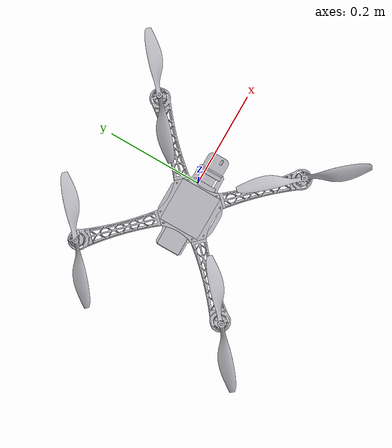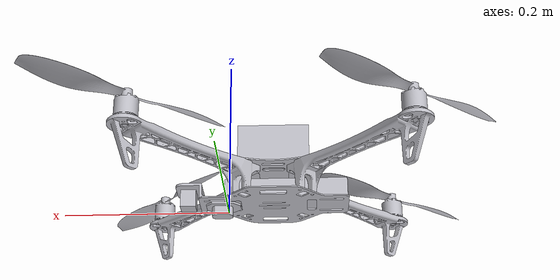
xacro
<?xml version="1.0" ?>
<robot name="F450" xmlns:xacro="http://www.ros.org/wiki/xacro">
  <xacro:arg name="is_ignition" default="false"/>

<!--xacro:include filename="$(find F450_description)/urdf/materials.xacro" -->
<xacro:include filename="$(find skyrn_description)/urdf/skyrn_ros2_control.xacro" />
<xacro:include filename="$(find skyrn_description)/urdf/skyrn_gazebo.xacro" />
<link name="base_link">
  <inertial>
    <origin xyz="-0.0543337048447064 -0.013298355942825918 0.05378858506314188" rpy="0 0 0"/>
    <mass value="0.013756910927204945"/>
    <inertia ixx="1.2e-05" iyy="1.2e-05" izz="2.5e-05" ixy="0.0" iyz="0.0" ixz="0.0"/>
  </inertial>
  <visual>
    <origin xyz="0 0 0" rpy="0 0 0"/>
    <geometry>
      <mesh filename="file://$(find skyrn_description)/meshes/base_link.stl" scale="0.001 0.001 0.001"/>
    </geometry>
    <material name="silver"/>
  </visual>
  <collision>
    <origin xyz="0 0 0" rpy="0 0 0"/>
    <geometry>
      <mesh filename="file://$(find skyrn_description)/meshes/base_link.stl" scale="0.001 0.001 0.001"/>
    </geometry>
  </collision>
</link>

<link name="arm_3">
  <inertial>
    <origin xyz="-0.04650493146235814 -0.06312344624100254 -0.009078858103441653" rpy="0 0 0"/>
    <mass value="0.03987411557229608"/>
    <inertia ixx="9.9e-05" iyy="9.9e-05" izz="0.00019" ixy="-9.1e-05" iyz="-2e-06" ixz="-2e-06"/>
  </inertial>
  <visual>
    <origin xyz="0.102417 0.044765 -0.052963" rpy="0 0 0"/>
    <geometry>
      <mesh filename="file://$(find skyrn_description)/meshes/arm_3.stl" scale="0.001 0.001 0.001"/>
    </geometry>
    <material name="silver"/>
  </visual>
  <collision>
    <origin xyz="0.102417 0.044765 -0.052963" rpy="0 0 0"/>
    <geometry>
      <mesh filename="file://$(find skyrn_description)/meshes/arm_3.stl" scale="0.001 0.001 0.001"/>
    </geometry>
  </collision>
</link>

<link name="arm_4">
  <inertial>
    <origin xyz="0.0465063854534787 -0.06312158256047451 -0.009078858103444706" rpy="0 0 0"/>
    <mass value="0.03987411557229608"/>
    <inertia ixx="9.9e-05" iyy="9.9e-05" izz="0.00019" ixy="9.1e-05" iyz="-2e-06" ixz="2e-06"/>
  </inertial>
  <visual>
    <origin xyz="0.00625 0.044765 -0.052963" rpy="0 0 0"/>
    <geometry>
      <mesh filename="file://$(find skyrn_description)/meshes/arm_4.stl" scale="0.001 0.001 0.001"/>
    </geometry>
    <material name="silver"/>
  </visual>
  <collision>
    <origin xyz="0.00625 0.044765 -0.052963" rpy="0 0 0"/>
    <geometry>
      <mesh filename="file://$(find skyrn_description)/meshes/arm_4.stl" scale="0.001 0.001 0.001"/>
    </geometry>
  </collision>
</link>

<link name="arm_1">
  <inertial>
    <origin xyz="-0.04650679514288587 0.06312187067482418 -0.009078858103443187" rpy="0 0 0"/>
    <mass value="0.03987411557229608"/>
    <inertia ixx="9.9e-05" iyy="9.9e-05" izz="0.00019" ixy="9.1e-05" iyz="2e-06" ixz="-2e-06"/>
  </inertial>
  <visual>
    <origin xyz="0.102417 -0.018168 -0.052963" rpy="0 0 0"/>
    <geometry>
      <mesh filename="file://$(find skyrn_description)/meshes/arm_1.stl" scale="0.001 0.001 0.001"/>
    </geometry>
    <material name="silver"/>
  </visual>
  <collision>
    <origin xyz="0.102417 -0.018168 -0.052963" rpy="0 0 0"/>
    <geometry>
      <mesh filename="file://$(find skyrn_description)/meshes/arm_1.stl" scale="0.001 0.001 0.001"/>
    </geometry>
  </collision>
</link>

<link name="arm_2">
  <inertial>
    <origin xyz="0.046504521772948414 0.06312373435535414 -0.009078858103445678" rpy="0 0 0"/>
    <mass value="0.03987411557229608"/>
    <inertia ixx="9.9e-05" iyy="9.9e-05" izz="0.00019" ixy="-9.1e-05" iyz="2e-06" ixz="2e-06"/>
  </inertial>
  <visual>
    <origin xyz="0.00625 -0.018168 -0.052963" rpy="0 0 0"/>
    <geometry>
      <mesh filename="file://$(find skyrn_description)/meshes/arm_2.stl" scale="0.001 0.001 0.001"/>
    </geometry>
    <material name="silver"/>
  </visual>
  <collision>
    <origin xyz="0.00625 -0.018168 -0.052963" rpy="0 0 0"/>
    <geometry>
      <mesh filename="file://$(find skyrn_description)/meshes/arm_2.stl" scale="0.001 0.001 0.001"/>
    </geometry>
  </collision>
</link>

<link name="bottomplate_1">
  <inertial>
    <origin xyz="0.03203229233421663 0.046199198717949516 -0.0008005185094625035" rpy="0 0 0"/>
    <mass value="0.020880309844134325"/>
    <inertia ixx="1.6e-05" iyy="4.5e-05" izz="6.1e-05" ixy="-0.0" iyz="0.0" ixz="0.0"/>
  </inertial>
  <visual>
    <origin xyz="0.086366 0.059826 -0.016157" rpy="0 0 0"/>
    <geometry>
      <mesh filename="file://$(find skyrn_description)/meshes/bottomplate_1.stl" scale="0.001 0.001 0.001"/>
    </geometry>
    <material name="silver"/>
  </visual>
  <collision>
    <origin xyz="0.086366 0.059826 -0.016157" rpy="0 0 0"/>
    <geometry>
      <mesh filename="file://$(find skyrn_description)/meshes/bottomplate_1.stl" scale="0.001 0.001 0.001"/>
    </geometry>
  </collision>
</link>

<link name="_Motor_4">
  <inertial>
    <origin xyz="2.266396532391024e-07 4.0393868960819646e-07 0.017191559032965237" rpy="0 0 0"/>
    <mass value="0.05631681064168464"/>
    <inertia ixx="1e-05" iyy="1e-05" izz="6e-06" ixy="-0.0" iyz="0.0" ixz="-0.0"/>
  </inertial>
  <visual>
    <origin xyz="0.213235 -0.145613 -0.047707" rpy="0 0 0"/>
    <geometry>
      <mesh filename="file://$(find skyrn_description)/meshes/_Motor_4.stl" scale="0.001 0.001 0.001"/>
    </geometry>
    <material name="silver"/>
  </visual>
  <collision>
    <origin xyz="0.213235 -0.145613 -0.047707" rpy="0 0 0"/>
    <geometry>
      <mesh filename="file://$(find skyrn_description)/meshes/_Motor_4.stl" scale="0.001 0.001 0.001"/>
    </geometry>
  </collision>
</link>

<link name="propeller_4">
  <inertial>
    <origin xyz="4.1516586807288647e-07 5.552286823362618e-07 -0.003826681205586116" rpy="0 0 0"/>
    <mass value="0.03695381718216272"/>
    <inertia ixx="6.8e-05" iyy="0.000105" izz="0.000172" ixy="-8.3e-05" iyz="-0.0" ixz="-0.0"/>
  </inertial>
  <visual>
    <origin xyz="0.213235 -0.145613 -0.091707" rpy="0 0 0"/>
    <geometry>
      <mesh filename="file://$(find skyrn_description)/meshes/propeller_4.stl" scale="0.001 0.001 0.001"/>
    </geometry>
    <material name="silver"/>
  </visual>
  <collision>
    <origin xyz="0.213235 -0.145613 -0.091707" rpy="0 0 0"/>
    <geometry>
      <mesh filename="file://$(find skyrn_description)/meshes/propeller_4.stl" scale="0.001 0.001 0.001"/>
    </geometry>
  </collision>
</link>

<link name="propeller_3">
  <inertial>
    <origin xyz="2.3585635043621433e-07 -1.3506797066908938e-07 -0.003826681205590418" rpy="0 0 0"/>
    <mass value="0.03695381718216272"/>
    <inertia ixx="6.8e-05" iyy="0.000105" izz="0.000172" ixy="-8.3e-05" iyz="-0.0" ixz="-0.0"/>
  </inertial>
  <visual>
    <origin xyz="-0.104578 -0.145603 -0.091707" rpy="0 0 0"/>
    <geometry>
      <mesh filename="file://$(find skyrn_description)/meshes/propeller_3.stl" scale="0.001 0.001 0.001"/>
    </geometry>
    <material name="silver"/>
  </visual>
  <collision>
    <origin xyz="-0.104578 -0.145603 -0.091707" rpy="0 0 0"/>
    <geometry>
      <mesh filename="file://$(find skyrn_description)/meshes/propeller_3.stl" scale="0.001 0.001 0.001"/>
    </geometry>
  </collision>
</link>

<link name="_Motor_3">
  <inertial>
    <origin xyz="5.5036814675113455e-08 -2.8742718391483457e-07 0.017191559032960407" rpy="0 0 0"/>
    <mass value="0.05631681064168464"/>
    <inertia ixx="1e-05" iyy="1e-05" izz="6e-06" ixy="0.0" iyz="0.0" ixz="0.0"/>
  </inertial>
  <visual>
    <origin xyz="-0.104578 -0.145603 -0.047707" rpy="0 0 0"/>
    <geometry>
      <mesh filename="file://$(find skyrn_description)/meshes/_Motor_3.stl" scale="0.001 0.001 0.001"/>
    </geometry>
    <material name="silver"/>
  </visual>
  <collision>
    <origin xyz="-0.104578 -0.145603 -0.047707" rpy="0 0 0"/>
    <geometry>
      <mesh filename="file://$(find skyrn_description)/meshes/_Motor_3.stl" scale="0.001 0.001 0.001"/>
    </geometry>
  </collision>
</link>

<link name="propeller_1">
  <inertial>
    <origin xyz="-6.455457598752989e-07 -5.768176738474295e-07 -0.0038266812055833127" rpy="0 0 0"/>
    <mass value="0.03695381718216272"/>
    <inertia ixx="6.8e-05" iyy="0.000105" izz="0.000172" ixy="-8.3e-05" iyz="0.0" ixz="0.0"/>
  </inertial>
  <visual>
    <origin xyz="0.213245 0.172199 -0.091707" rpy="0 0 0"/>
    <geometry>
      <mesh filename="file://$(find skyrn_description)/meshes/propeller_1.stl" scale="0.001 0.001 0.001"/>
    </geometry>
    <material name="silver"/>
  </visual>
  <collision>
    <origin xyz="0.213245 0.172199 -0.091707" rpy="0 0 0"/>
    <geometry>
      <mesh filename="file://$(find skyrn_description)/meshes/propeller_1.stl" scale="0.001 0.001 0.001"/>
    </geometry>
  </collision>
</link>

<link name="propeller_2">
  <inertial>
    <origin xyz="5.160301551898616e-07 -2.9664387288241834e-07 -0.0037266812055875426" rpy="0 0 0"/>
    <mass value="0.03695381718216272"/>
    <inertia ixx="0.000105" iyy="6.8e-05" izz="0.000172" ixy="8.3e-05" iyz="0.0" ixz="-0.0"/>
  </inertial>
  <visual>
    <origin xyz="-0.104567 0.17221 -0.091707" rpy="0 0 0"/>
    <geometry>
      <mesh filename="file://$(find skyrn_description)/meshes/propeller_2.stl" scale="0.001 0.001 0.001"/>
    </geometry>
    <material name="silver"/>
  </visual>
  <collision>
    <origin xyz="-0.104567 0.17221 -0.091707" rpy="0 0 0"/>
    <geometry>
      <mesh filename="file://$(find skyrn_description)/meshes/propeller_2.stl" scale="0.001 0.001 0.001"/>
    </geometry>
  </collision>
</link>

<link name="_Motor_1">
  <inertial>
    <origin xyz="-4.6472622480808745e-07 -4.2445846148986277e-07 0.017191559032967735" rpy="0 0 0"/>
    <mass value="0.05631681064168464"/>
    <inertia ixx="1e-05" iyy="1e-05" izz="6e-06" ixy="0.0" iyz="-0.0" ixz="-0.0"/>
  </inertial>
  <visual>
    <origin xyz="0.213245 0.172199 -0.047707" rpy="0 0 0"/>
    <geometry>
      <mesh filename="file://$(find skyrn_description)/meshes/_Motor_1.stl" scale="0.001 0.001 0.001"/>
    </geometry>
    <material name="silver"/>
  </visual>
  <collision>
    <origin xyz="0.213245 0.172199 -0.047707" rpy="0 0 0"/>
    <geometry>
      <mesh filename="file://$(find skyrn_description)/meshes/_Motor_1.stl" scale="0.001 0.001 0.001"/>
    </geometry>
  </collision>
</link>

<link name="_Motor_2">
  <inertial>
    <origin xyz="3.6367094204126094e-07 -1.1582433770418454e-07 0.017191559032963377" rpy="0 0 0"/>
    <mass value="0.05631681064168464"/>
    <inertia ixx="1e-05" iyy="1e-05" izz="6e-06" ixy="-0.0" iyz="-0.0" ixz="0.0"/>
  </inertial>
  <visual>
    <origin xyz="-0.104567 0.17221 -0.047707" rpy="0 0 0"/>
    <geometry>
      <mesh filename="file://$(find skyrn_description)/meshes/_Motor_2.stl" scale="0.001 0.001 0.001"/>
    </geometry>
    <material name="silver"/>
  </visual>
  <collision>
    <origin xyz="-0.104567 0.17221 -0.047707" rpy="0 0 0"/>
    <geometry>
      <mesh filename="file://$(find skyrn_description)/meshes/_Motor_2.stl" scale="0.001 0.001 0.001"/>
    </geometry>
  </collision>
</link>

<link name="battery_1">
  <inertial>
    <origin xyz="-0.08330868642242008 -0.0164722960708094 0.035413775071957525" rpy="0 0 0"/>
    <mass value="1.3981527306598096"/>
    <inertia ixx="0.000339" iyy="0.002654" izz="0.002848" ixy="-0.0" iyz="-0.0" ixz="0.0"/>
  </inertial>
  <visual>
    <origin xyz="-0.014 -0.002858 0.00676" rpy="0 0 0"/>
    <geometry>
      <mesh filename="file://$(find skyrn_description)/meshes/battery_1.stl" scale="0.001 0.001 0.001"/>
    </geometry>
    <material name="silver"/>
  </visual>
  <collision>
    <origin xyz="-0.014 -0.002858 0.00676" rpy="0 0 0"/>
    <geometry>
      <mesh filename="file://$(find skyrn_description)/meshes/battery_1.stl" scale="0.001 0.001 0.001"/>
    </geometry>
  </collision>
</link>

<link name="case_1">
  <inertial>
    <origin xyz="0.0566978093645076 -0.05433289421942987 0.0909377126210428" rpy="0 0 0"/>
    <mass value="0.06547177822909102"/>
    <inertia ixx="6.9e-05" iyy="7.2e-05" izz="0.000111" ixy="0.0" iyz="-0.0" ixz="-1e-06"/>
  </inertial>
  <visual>
    <origin xyz="0.108947 -0.041035 0.00601" rpy="0 0 0"/>
    <geometry>
      <mesh filename="file://$(find skyrn_description)/meshes/case_1.stl" scale="0.001 0.001 0.001"/>
    </geometry>
    <material name="silver"/>
  </visual>
  <collision>
    <origin xyz="0.108947 -0.041035 0.00601" rpy="0 0 0"/>
    <geometry>
      <mesh filename="file://$(find skyrn_description)/meshes/case_1.stl" scale="0.001 0.001 0.001"/>
    </geometry>
  </collision>
</link>

<link name="pixhawk_1">
  <inertial>
    <origin xyz="1.2732772420170901e-06 -3.5594498492066973e-07 0.007749585063141912" rpy="0 0 0"/>
    <mass value="0.4511205515846654"/>
    <inertia ixx="8.9e-05" iyy="0.000262" izz="0.000333" ixy="0.0" iyz="0.0" ixz="-0.0"/>
  </inertial>
  <visual>
    <origin xyz="0.054334 0.013298 -0.054614" rpy="0 0 0"/>
    <geometry>
      <mesh filename="file://$(find skyrn_description)/meshes/pixhawk_1.stl" scale="0.001 0.001 0.001"/>
    </geometry>
    <material name="silver"/>
  </visual>
  <collision>
    <origin xyz="0.054334 0.013298 -0.054614" rpy="0 0 0"/>
    <geometry>
      <mesh filename="file://$(find skyrn_description)/meshes/pixhawk_1.stl" scale="0.001 0.001 0.001"/>
    </geometry>
  </collision>
</link>

<link name="raspi5_1">
  <inertial>
    <origin xyz="0.00015243727343213637 5.323330193622404e-05 0.008499585063141663" rpy="0 0 0"/>
    <mass value="0.6277288293218457"/>
    <inertia ixx="0.000177" iyy="0.00039" izz="0.000536" ixy="2e-06" iyz="0.0" ixz="0.0"/>
  </inertial>
  <visual>
    <origin xyz="0.054334 0.013298 -0.081814" rpy="0 0 0"/>
    <geometry>
      <mesh filename="file://$(find skyrn_description)/meshes/raspi5_1.stl" scale="0.001 0.001 0.001"/>
    </geometry>
    <material name="silver"/>
  </visual>
  <collision>
    <origin xyz="0.054334 0.013298 -0.081814" rpy="0 0 0"/>
    <geometry>
      <mesh filename="file://$(find skyrn_description)/meshes/raspi5_1.stl" scale="0.001 0.001 0.001"/>
    </geometry>
  </collision>
</link>

<link name="optical_hybro_1">
  <inertial>
    <origin xyz="0.060491291297773885 -0.01431424849973715 0.00650921363963785" rpy="0 0 0"/>
    <mass value="0.05550519941119164"/>
    <inertia ixx="3e-06" iyy="5e-06" izz="6e-06" ixy="0.0" iyz="-0.0" ixz="0.0"/>
  </inertial>
  <visual>
    <origin xyz="0.052 -0.001258 -0.002495" rpy="0 0 0"/>
    <geometry>
      <mesh filename="file://$(find skyrn_description)/meshes/optical_hybro_1.stl" scale="0.001 0.001 0.001"/>
    </geometry>
    <material name="silver"/>
  </visual>
  <collision>
    <origin xyz="0.052 -0.001258 -0.002495" rpy="0 0 0"/>
    <geometry>
      <mesh filename="file://$(find skyrn_description)/meshes/optical_hybro_1.stl" scale="0.001 0.001 0.001"/>
    </geometry>
  </collision>
</link>

<link name="cam_mount_1">
  <inertial>
    <origin xyz="0.13037709948445736 -0.015566013863293138 0.026148953586497454" rpy="0 0 0"/>
    <mass value="0.061471309295761875"/>
    <inertia ixx="1.3e-05" iyy="1.1e-05" izz="1.8e-05" ixy="-0.0" iyz="-0.0" ixz="-4e-06"/>
  </inertial>
  <visual>
    <origin xyz="0.0891 -0.002858 -0.002495" rpy="0 0 0"/>
    <geometry>
      <mesh filename="file://$(find skyrn_description)/meshes/cam_mount_1.stl" scale="0.001 0.001 0.001"/>
    </geometry>
    <material name="silver"/>
  </visual>
  <collision>
    <origin xyz="0.0891 -0.002858 -0.002495" rpy="0 0 0"/>
    <geometry>
      <mesh filename="file://$(find skyrn_description)/meshes/cam_mount_1.stl" scale="0.001 0.001 0.001"/>
    </geometry>
  </collision>
</link>

<link name="camera_1">
  <inertial>
    <origin xyz="2.9515529572504695e-07 -2.5608530274806585e-07 -0.010999529122995025" rpy="0 0 0"/>
    <mass value="0.062344699999999996"/>
    <inertia ixx="4e-06" iyy="4e-06" izz="4e-06" ixy="-0.0" iyz="-0.0" ixz="0.0"/>
  </inertial>
  <visual>
    <origin xyz="-0.051266 0.012861 -0.033156" rpy="0 0 0"/>
    <geometry>
      <mesh filename="file://$(find skyrn_description)/meshes/camera_1.stl" scale="0.001 0.001 0.001"/>
    </geometry>
    <material name="silver"/>
  </visual>
  <collision>
    <origin xyz="-0.051266 0.012861 -0.033156" rpy="0 0 0"/>
    <geometry>
      <mesh filename="file://$(find skyrn_description)/meshes/camera_1.stl" scale="0.001 0.001 0.001"/>
    </geometry>
  </collision>
</link>

<joint name="Rigid 3" type="fixed">
  <origin xyz="-0.102417 -0.044765 0.052963" rpy="0 0 0"/>
  <parent link="base_link"/>
  <child link="arm_3"/>
</joint>

<joint name="Rigid 8" type="fixed">
  <origin xyz="-0.00625 -0.044765 0.052963" rpy="0 0 0"/>
  <parent link="base_link"/>
  <child link="arm_4"/>
</joint>

<joint name="Rigid 12" type="fixed">
  <origin xyz="-0.102417 0.018168 0.052963" rpy="0 0 0"/>
  <parent link="base_link"/>
  <child link="arm_1"/>
</joint>

<joint name="Rigid 15" type="fixed">
  <origin xyz="-0.00625 0.018168 0.052963" rpy="0 0 0"/>
  <parent link="base_link"/>
  <child link="arm_2"/>
</joint>

<joint name="Rigid 18" type="fixed">
  <origin xyz="0.016051 -0.015061 -0.036806" rpy="0 0 0"/>
  <parent link="arm_3"/>
  <child link="bottomplate_1"/>
</joint>

<joint name="Rigid 19" type="fixed">
  <origin xyz="-0.110818 0.127445 -0.005256" rpy="0 0 0"/>
  <parent link="arm_1"/>
  <child link="_Motor_4"/>
</joint>

<joint name="Revolute 20" type="continuous">
  <origin xyz="0.0 0.0 0.044" rpy="0 0 0"/>
  <parent link="_Motor_4"/>
  <child link="propeller_4"/>
  <axis xyz="0.0 0.0 1.0"/>
</joint>

<joint name="Revolute 21" type="continuous">
  <origin xyz="0.0 0.0 0.044" rpy="0 0 0"/>
  <parent link="_Motor_3"/>
  <child link="propeller_3"/>
  <axis xyz="0.0 0.0 1.0"/>
</joint>

<joint name="Rigid 22" type="fixed">
  <origin xyz="0.110828 0.127435 -0.005256" rpy="0 0 0"/>
  <parent link="arm_2"/>
  <child link="_Motor_3"/>
</joint>

<joint name="Revolute 23" type="continuous">
  <origin xyz="0.0 0.0 0.044" rpy="0 0 0"/>
  <parent link="_Motor_1"/>
  <child link="propeller_1"/>
  <axis xyz="0.0 0.0 1.0"/>
</joint>

<joint name="Revolute 24" type="continuous">
  <origin xyz="0.0 0.0 0.044" rpy="0 0 0"/>
  <parent link="_Motor_2"/>
  <child link="propeller_2"/>
  <axis xyz="0.0 0.0 1.0"/>
</joint>

<joint name="Rigid 25" type="fixed">
  <origin xyz="-0.110828 -0.127434 -0.005256" rpy="0 0 0"/>
  <parent link="arm_3"/>
  <child link="_Motor_1"/>
</joint>

<joint name="Rigid 26" type="fixed">
  <origin xyz="0.110817 -0.127445 -0.005256" rpy="0 0 0"/>
  <parent link="arm_4"/>
  <child link="_Motor_2"/>
</joint>

<joint name="Rigid 38" type="fixed">
  <origin xyz="0.100366 0.062684 -0.022917" rpy="0 0 0"/>
  <parent link="bottomplate_1"/>
  <child link="battery_1"/>
</joint>

<joint name="Rigid 39" type="fixed">
  <origin xyz="-0.108947 0.041035 -0.00601" rpy="0 0 0"/>
  <parent link="base_link"/>
  <child link="case_1"/>
</joint>

<joint name="Rigid 40" type="fixed">
  <origin xyz="-0.054334 -0.013298 0.054614" rpy="0 0 0"/>
  <parent link="base_link"/>
  <child link="pixhawk_1"/>
</joint>

<joint name="Rigid 41" type="fixed">
  <origin xyz="0.054613 -0.054333 0.087824" rpy="0 0 0"/>
  <parent link="case_1"/>
  <child link="raspi5_1"/>
</joint>

<joint name="Rigid 42" type="fixed">
  <origin xyz="0.034366 0.061084 -0.013662" rpy="0 0 0"/>
  <parent link="bottomplate_1"/>
  <child link="optical_hybro_1"/>
</joint>

<joint name="Rigid 45" type="fixed">
  <origin xyz="-0.002734 0.062684 -0.013662" rpy="0 0 0"/>
  <parent link="bottomplate_1"/>
  <child link="cam_mount_1"/>
</joint>

<joint name="Rigid 46" type="fixed">
  <origin xyz="0.140366 -0.015719 0.030661" rpy="0 0 0"/>
  <parent link="cam_mount_1"/>
  <child link="camera_1"/>
</joint>

</robot>

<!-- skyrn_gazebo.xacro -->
<robot name="F450" xmlns:xacro="http://www.ros.org/wiki/xacro">

  <xacro:property name="body_color" value="Gazebo/Silver"/>

  <!-- Base Link (Physics Root) -->
  <gazebo reference="base_link">
    <material>${body_color}</material>
    <gravity>true</gravity>
    <self_collide>false</self_collide>

    <!-- Air + rotational damping -->
    <linearDamping>0.02</linearDamping>
    <angularDamping>0.02</angularDamping>
  </gazebo>

  <!-- Structural Parts -->

  <gazebo reference="arm_1">
    <material>${body_color}</material>
    <self_collide>false</self_collide>
  </gazebo>

  <gazebo reference="arm_2">
    <material>${body_color}</material>
    <self_collide>false</self_collide>
  </gazebo>

  <gazebo reference="arm_3">
    <material>${body_color}</material>
    <self_collide>false</self_collide>
  </gazebo>

  <gazebo reference="arm_4">
    <material>${body_color}</material>
    <self_collide>false</self_collide>
  </gazebo>

  <gazebo reference="bottomplate_1">
    <material>${body_color}</material>
    <self_collide>false</self_collide>
  </gazebo>

  <!-- Motors (No friction) -->

  <gazebo reference="_Motor_1">
    <material>${body_color}</material>
    <self_collide>false</self_collide>
  </gazebo>

  <gazebo reference="_Motor_2">
    <material>${body_color}</material>
    <self_collide>false</self_collide>
  </gazebo>

  <gazebo reference="_Motor_3">
    <material>${body_color}</material>
    <self_collide>false</self_collide>
  </gazebo>

  <gazebo reference="_Motor_4">
    <material>${body_color}</material>
    <self_collide>false</self_collide>
  </gazebo>

  <!-- Propellers (CRITICAL FIX) -->

  <gazebo reference="propeller_1">
    <material>${body_color}</material>
    <self_collide>false</self_collide>
    <collision>false</collision>
  </gazebo>

  <gazebo reference="propeller_2">
    <material>${body_color}</material>
    <self_collide>false</self_collide>
    <collision>false</collision>
  </gazebo>

  <gazebo reference="propeller_3">
    <material>${body_color}</material>
    <self_collide>false</self_collide>
    <collision>false</collision>
  </gazebo>

  <gazebo reference="propeller_4">
    <material>${body_color}</material>
    <self_collide>false</self_collide>
    <collision>false</collision>
  </gazebo>

  <!-- Electronics -->

  <gazebo reference="battery_1">
    <material>${body_color}</material>
    <self_collide>false</self_collide>
  </gazebo>

  <gazebo reference="case_1">
    <material>${body_color}</material>
    <self_collide>false</self_collide>
  </gazebo>

  <gazebo reference="pixhawk_1">
    <material>${body_color}</material>
    <self_collide>false</self_collide>
  </gazebo>

  <gazebo reference="raspi5_1">
    <material>${body_color}</material>
    <self_collide>false</self_collide>
  </gazebo>

  <!-- Sensors -->

  <gazebo reference="optical_hybro_1">
    <material>${body_color}</material>
    <self_collide>false</self_collide>
  </gazebo>

  <gazebo reference="cam_mount_1">
    <material>${body_color}</material>
    <self_collide>false</self_collide>
  </gazebo>

  <gazebo reference="camera_1">
    <material>${body_color}</material>
    <self_collide>false</self_collide>
  </gazebo>

</robot>
